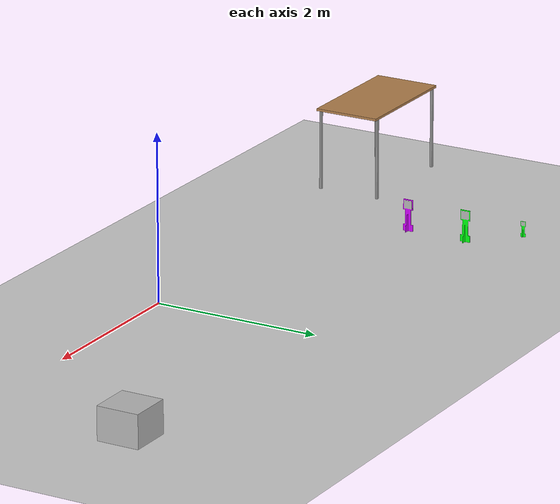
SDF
<sdf version="1.6">
 <world name="default">
  <model name="pisosala">
   <static>1</static>
   <link name="course_link">
    <collision name="course_collision">
     <geometry><plane><normal>0 0 1</normal><size>10 13</size></plane></geometry>
     <surface><friction><ode><mu>100</mu><mu2>50</mu2></ode></friction></surface>
    </collision>
    <visual name="course_visual">
     <cast_shadows>0</cast_shadows>
     <geometry><plane><normal>0 0 1</normal><size>10 13</size></plane></geometry>
     <material>
      <script>
       <uri>model://mundoteste/pisosala/materials/scripts</uri>
       <uri>model://mundoteste/pisosala/materials/textures</uri>
       <name>pisosala</name>
      </script>
     </material>
    </visual>
   </link>
   <pose>0 0 0 0 0 -1.57</pose>
  </model>
  <model name="caixa">
   <static>1</static>
   <link name="box">
    <collision name="collision"><geometry><box><size>0.5 0.5 0.5</size></box></geometry></collision>
    <visual name="visual">
     <geometry><box><size>0.5 0.5 0.5</size></box></geometry>
     <material>
      <script>
       <uri>model://sala404_creepers/caixa/materials/scripts</uri>
       <uri>model://sala404_creepers/caixa/materials/textures</uri>
       <name>caixa</name>
      </script>
     </material>
    </visual>
   </link>
   <pose>3.5 1.8 0.13 0 -0 0</pose>
  </model>
  <model name="creeper01">
   <link name="link_0">
    <inertial>
     <mass>1</mass>
     <inertia>
      <ixx>0.166667</ixx>
      <ixy>0</ixy>
      <ixz>0</ixz>
      <iyy>0.166667</iyy>
      <iyz>0</iyz>
      <izz>0.166667</izz>
     </inertia>
    </inertial>
    <pose>5e-06 -5e-06 0 0 -0 0</pose>
    <visual name="visual">
     <geometry>
      <mesh>
       <uri>model://sala404_creepers/creeper/creeper01/materials/textures/Creeper.dae</uri>
       <scale>1 1 1</scale>
      </mesh>
     </geometry>
     <material><lighting>1</lighting></material>
    </visual>
    <collision name="collision">
     <geometry>
      <mesh>
       <uri>model://sala404_creepers/creeper/creeper01/materials/textures/Creeper.dae</uri>
       <scale>1 1 1</scale>
      </mesh>
     </geometry>
     <surface>
      <friction>
       <ode><mu>1</mu><mu2>1</mu2><fdir1>0 0 0</fdir1><slip1>0</slip1><slip2>0</slip2></ode>
       <torsional>
        <coefficient>1</coefficient>
        <patch_radius>0</patch_radius>
        <surface_radius>0</surface_radius>
        <use_patch_radius>1</use_patch_radius>
        <ode><slip>0</slip></ode>
       </torsional>
      </friction>
      <bounce><restitution_coefficient>0</restitution_coefficient><threshold>1e+06</threshold></bounce>
      <contact>
       <collide_without_contact>0</collide_without_contact>
       <collide_without_contact_bitmask>1</collide_without_contact_bitmask>
       <collide_bitmask>1</collide_bitmask>
       <ode>
        <soft_cfm>0</soft_cfm>
        <soft_erp>0.2</soft_erp>
        <kp>1e+13</kp>
        <kd>1</kd>
        <max_vel>0.01</max_vel>
        <min_depth>0</min_depth>
       </ode>
       <bullet>
        <split_impulse>1</split_impulse>
        <split_impulse_penetration_threshold>-0.01</split_impulse_penetration_threshold>
        <soft_cfm>0</soft_cfm>
        <soft_erp>0.2</soft_erp>
        <kp>1e+13</kp>
        <kd>1</kd>
       </bullet>
      </contact>
     </surface>
    </collision>
   </link>
   <static>0</static>
   <pose>-3.5 1.25 0.147771 -7e-06 1.3e-05 0</pose>
  </model>
  <model name="creeper02">
   <link name="link_0">
    <inertial>
     <mass>1</mass>
     <inertia>
      <ixx>0.166667</ixx>
      <ixy>0</ixy>
      <ixz>0</ixz>
      <iyy>0.166667</iyy>
      <iyz>0</iyz>
      <izz>0.166667</izz>
     </inertia>
    </inertial>
    <pose>5e-06 -5e-06 0 0 -0 0</pose>
    <visual name="visual">
     <geometry>
      <mesh>
       <uri>model://sala404_creepers/creeper/creeper02/materials/textures/Creeper.dae</uri>
       <scale>1 1 1</scale>
      </mesh>
     </geometry>
     <material><lighting>1</lighting></material>
    </visual>
    <collision name="collision">
     <geometry>
      <mesh>
       <uri>model://sala404_creepers/creeper/creeper02/materials/textures/Creeper.dae</uri>
       <scale>1 1 1</scale>
      </mesh>
     </geometry>
     <surface>
      <friction>
       <ode><mu>1</mu><mu2>1</mu2><fdir1>0 0 0</fdir1><slip1>0</slip1><slip2>0</slip2></ode>
       <torsional>
        <coefficient>1</coefficient>
        <patch_radius>0</patch_radius>
        <surface_radius>0</surface_radius>
        <use_patch_radius>1</use_patch_radius>
        <ode><slip>0</slip></ode>
       </torsional>
      </friction>
      <bounce><restitution_coefficient>0</restitution_coefficient><threshold>1e+06</threshold></bounce>
      <contact>
       <collide_without_contact>0</collide_without_contact>
       <collide_without_contact_bitmask>1</collide_without_contact_bitmask>
       <collide_bitmask>1</collide_bitmask>
       <ode>
        <soft_cfm>0</soft_cfm>
        <soft_erp>0.2</soft_erp>
        <kp>1e+13</kp>
        <kd>1</kd>
        <max_vel>0.01</max_vel>
        <min_depth>0</min_depth>
       </ode>
       <bullet>
        <split_impulse>1</split_impulse>
        <split_impulse_penetration_threshold>-0.01</split_impulse_penetration_threshold>
        <soft_cfm>0</soft_cfm>
        <soft_erp>0.2</soft_erp>
        <kp>1e+13</kp>
        <kd>1</kd>
       </bullet>
      </contact>
     </surface>
    </collision>
   </link>
   <static>0</static>
   <pose>-3.5 2.75 0.147762 -2.2e-05 -1.6e-05 -1.7e-05</pose>
  </model>
  <model name="creeper03">
   <link name="link_0">
    <inertial>
     <mass>1</mass>
     <inertia>
      <ixx>0.166667</ixx>
      <ixy>0</ixy>
      <ixz>0</ixz>
      <iyy>0.166667</iyy>
      <iyz>0</iyz>
      <izz>0.166667</izz>
     </inertia>
    </inertial>
    <pose>5e-06 -5e-06 0 0 -0 0</pose>
    <visual name="visual">
     <geometry>
      <mesh>
       <uri>model://sala404_creepers/creeper/creeper03/materials/textures/Creeper.dae</uri>
       <scale>1 1 1</scale>
      </mesh>
     </geometry>
     <material><lighting>1</lighting></material>
    </visual>
    <collision name="collision">
     <geometry>
      <mesh>
       <uri>model://sala404_creepers/creeper/creeper03/materials/textures/Creeper.dae</uri>
       <scale>1 1 1</scale>
      </mesh>
     </geometry>
     <surface>
      <friction>
       <ode><mu>1</mu><mu2>1</mu2><fdir1>0 0 0</fdir1><slip1>0</slip1><slip2>0</slip2></ode>
       <torsional>
        <coefficient>1</coefficient>
        <patch_radius>0</patch_radius>
        <surface_radius>0</surface_radius>
        <use_patch_radius>1</use_patch_radius>
        <ode><slip>0</slip></ode>
       </torsional>
      </friction>
      <bounce><restitution_coefficient>0</restitution_coefficient><threshold>1e+06</threshold></bounce>
      <contact>
       <collide_without_contact>0</collide_without_contact>
       <collide_without_contact_bitmask>1</collide_without_contact_bitmask>
       <collide_bitmask>1</collide_bitmask>
       <ode>
        <soft_cfm>0</soft_cfm>
        <soft_erp>0.2</soft_erp>
        <kp>1e+13</kp>
        <kd>1</kd>
        <max_vel>0.01</max_vel>
        <min_depth>0</min_depth>
       </ode>
       <bullet>
        <split_impulse>1</split_impulse>
        <split_impulse_penetration_threshold>-0.01</split_impulse_penetration_threshold>
        <soft_cfm>0</soft_cfm>
        <soft_erp>0.2</soft_erp>
        <kp>1e+13</kp>
        <kd>1</kd>
       </bullet>
      </contact>
     </surface>
    </collision>
   </link>
   <static>0</static>
   <pose>-3.5 2 0.147771 0 -0 5e-06</pose>
  </model>
  <model name="lab404">
   <model name="table">
    <static>1</static>
    <link name="link">
     <collision name="surface">
      <pose>0 0 1 0 -0 0</pose>
      <geometry><box><size>1.5 0.8 0.03</size></box></geometry>
      <surface><friction><ode><mu>0.6</mu><mu2>0.6</mu2></ode></friction></surface>
     </collision>
     <visual name="visual1">
      <pose>0 0 1 0 -0 0</pose>
      <geometry><box><size>1.5 0.8 0.03</size></box></geometry>
      <material>
       <script><uri>file://media/materials/scripts/gazebo.material</uri><name>Gazebo/Wood</name></script>
      </material>
     </visual>
     <collision name="front_left_leg">
      <pose>0.68 0.38 0.5 0 -0 0</pose>
      <geometry><cylinder><radius>0.02</radius><length>1</length></cylinder></geometry>
     </collision>
     <visual name="front_left_leg">
      <pose>0.68 0.38 0.5 0 -0 0</pose>
      <geometry><cylinder><radius>0.02</radius><length>1</length></cylinder></geometry>
      <material>
       <script><uri>file://media/materials/scripts/gazebo.material</uri><name>Gazebo/Grey</name></script>
      </material>
     </visual>
     <collision name="front_right_leg">
      <pose>0.68 -0.38 0.5 0 -0 0</pose>
      <geometry><cylinder><radius>0.02</radius><length>1</length></cylinder></geometry>
     </collision>
     <visual name="front_right_leg">
      <pose>0.68 -0.38 0.5 0 -0 0</pose>
      <geometry><cylinder><radius>0.02</radius><length>1</length></cylinder></geometry>
      <material>
       <script><uri>file://media/materials/scripts/gazebo.material</uri><name>Gazebo/Grey</name></script>
      </material>
     </visual>
     <collision name="back_right_leg">
      <pose>-0.68 -0.38 0.5 0 -0 0</pose>
      <geometry><cylinder><radius>0.02</radius><length>1</length></cylinder></geometry>
     </collision>
     <visual name="back_right_leg">
      <pose>-0.68 -0.38 0.5 0 -0 0</pose>
      <geometry><cylinder><radius>0.02</radius><length>1</length></cylinder></geometry>
      <material>
       <script><uri>file://media/materials/scripts/gazebo.material</uri><name>Gazebo/Grey</name></script>
      </material>
     </visual>
     <collision name="back_left_leg">
      <pose>-0.68 0.38 0.5 0 -0 0</pose>
      <geometry><cylinder><radius>0.02</radius><length>1</length></cylinder></geometry>
     </collision>
     <visual name="back_left_leg">
      <pose>-0.68 0.38 0.5 0 -0 0</pose>
      <geometry><cylinder><radius>0.02</radius><length>1</length></cylinder></geometry>
      <material>
       <script><uri>file://media/materials/scripts/gazebo.material</uri><name>Gazebo/Grey</name></script>
      </material>
     </visual>
    </link>
   </model>
   <static>0</static>
   <pose>-5 0 0 0 -0 0</pose>
  </model>
 </world>
</sdf>
